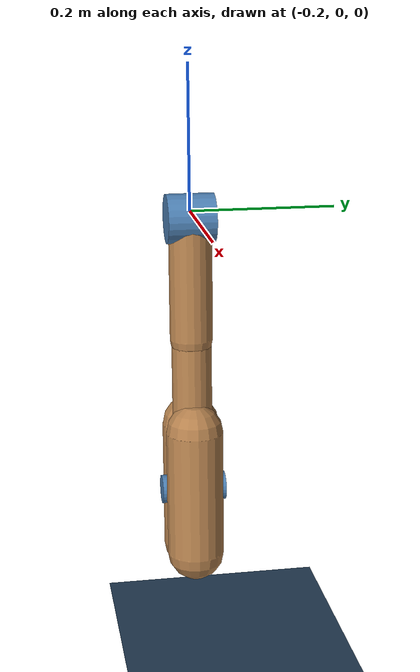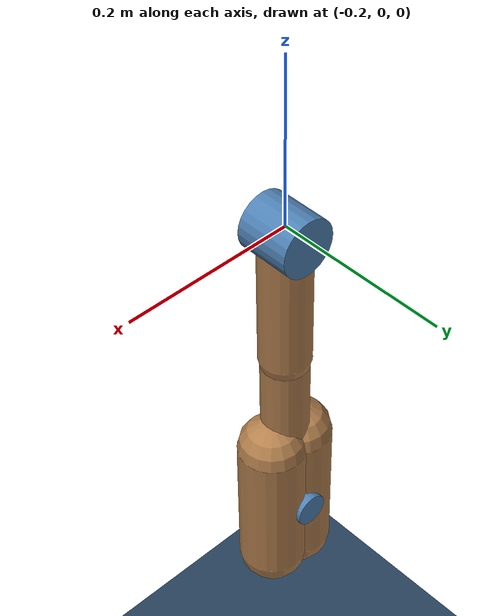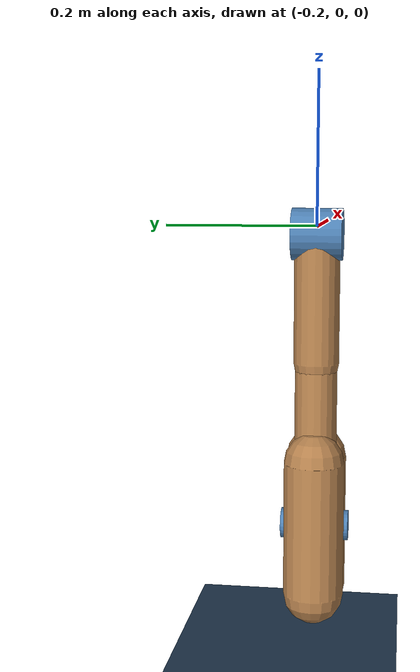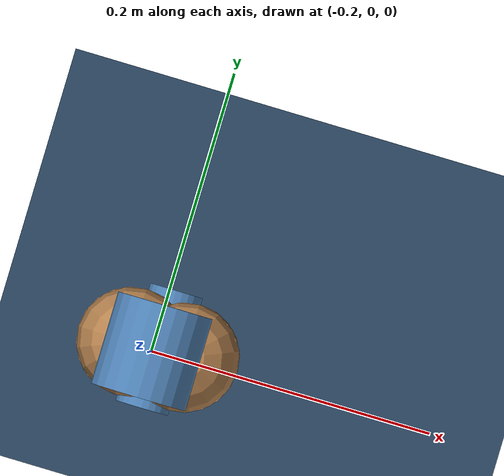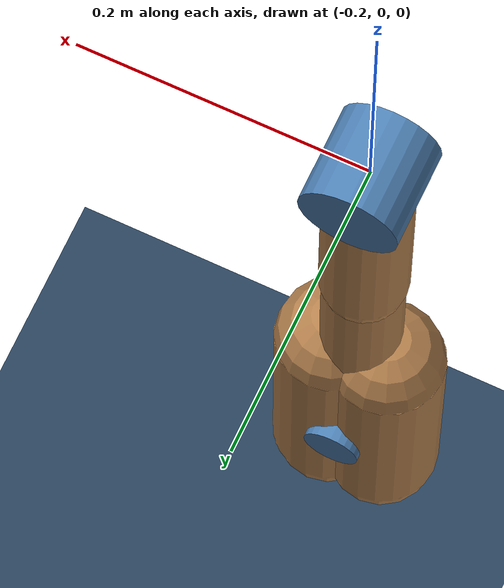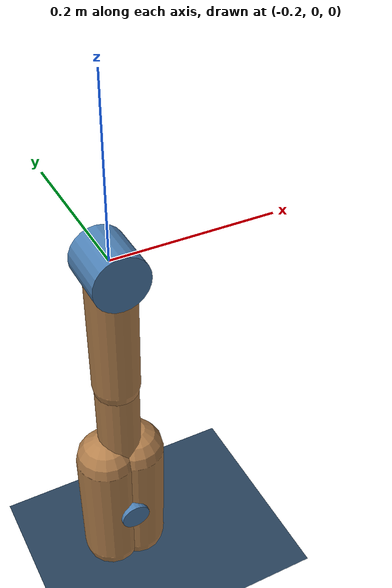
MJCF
<!--Compare at 150 samples 1000 encouragement of collision and 100ms Cov Reg: 1-->

<mujoco model="finger">

    <visual>
        <headlight ambient=".4 .4 .4" diffuse=".8 .8 .8" specular="0.1 0.1 0.1"/>
        <map znear=".01"/>
        <quality shadowsize="2048"/>
    </visual>

    <asset>
        <texture name="skybox" type="skybox" builtin="gradient" rgb1=".4 .6 .8" rgb2="0 0 0"
                 width="800" height="800" mark="random" markrgb="1 1 1"/>
    </asset>

    <asset>
        <texture name="grid" type="2d" builtin="checker" rgb1=".1 .2 .3" rgb2=".2 .3 .4" width="300" height="300" mark="edge" markrgb=".2 .3 .4"/>
        <material name="grid" texture="grid" texrepeat="1 1" texuniform="true" reflectance=".2"/>
        <material name="self" rgba=".7 .5 .3 1"/>
        <material name="self_default" rgba=".7 .5 .3 1"/>
        <material name="self_highlight" rgba="0 .5 .3 1"/>
        <material name="effector" rgba=".7 .4 .2 1"/>
        <material name="effector_default" rgba=".7 .4 .2 1"/>
        <material name="effector_highlight" rgba="0 .5 .3 1"/>
        <material name="decoration" rgba=".3 .5 .7 1"/>
        <material name="eye" rgba="0 .2 1 1"/>
        <material name="target" rgba=".6 .3 .3 1"/>
        <material name="target_default" rgba=".6 .3 .3 1"/>
        <material name="target_highlight" rgba=".6 .3 .3 .4"/>
    </asset>

    <option timestep="0.01" cone="elliptic" iterations="20">
        <flag gravity="disable"/>
    </option>

    <default>
        <geom solimp="0 0.9 0.01" solref=".02 1"/>
        <joint type="hinge" axis="0 -1 0"/>
        <motor ctrllimited="true" ctrlrange="-1 1"/>
        <default class="finger">
            <site type="ellipsoid" size=".025 .03 .025" rgba=".5 .5 .5 .3" group="3"/>
        </default>
    </default>

    <worldbody>
        <light name="light" directional="true" diffuse=".6 .6 .6" pos="0 0 2" specular=".3 .3 .3"/>
        <geom name="ground" type="plane" pos="0 0 -0.6" size=".6 .2 10" material="grid"/>
        <camera name="cam0" pos="0 -1 .8" xyaxes="1 0 0 0 1 2"/>
        <camera name="cam1" pos="0 -1 .4" xyaxes="1 0 0 0 0 1" />

        <body name="proximal" pos="-.2 0 -0.01" childclass="finger">
            <geom name="proximal_decoration" type="cylinder" fromto="0 -.033 0 0 .033 0" size=".034" material="decoration" />
            <joint name="proximal" range="-150 -80" ref="-90" damping="0.05" limited="false" />
            <geom name="proximal" type="capsule" material="self" size=".03" fromto="0 0 0 0 0 -.17"/>
            <body name="distal" pos="0 0 -.18" childclass="finger">
                <joint name="distal" range="-50 50" damping="0.05" limited="false"/>
                <geom name="distal" type="capsule" size=".028" material="self" fromto="0 0 0 0 0 -.16" contype="0" conaffinity="0"/>
                <geom name="fingertip" type="capsule" size=".03" material="effector" fromto="0 0 -.13 0 0 -.161"/>
                <site name="touchtop" pos=".01 0 -.17"/>
                <site name="touchbottom" pos="-.01 0 -.17"/>
            </body>
        </body>

        <body name="spinner" pos="-.2 0 -.4">
            <joint name="hinge" range="-50 50" frictionloss=".01" damping=".35" limited="false"/>
            <geom name="cap1" type="capsule" size=".04 .09" material="self" pos=".02 0 0" />
            <geom name="cap2" type="capsule" size=".04 .09" material="self" pos="-.02 0 0"/>
            <site name="tip" type="sphere"  size=".02" pos="0 0 .13" material="target"/>
            <geom name="spinner_decoration" type="cylinder" fromto="0 -.045 0 0 .045 0" size=".02" material="decoration"/>
        </body>

    </worldbody>

    <actuator>
        <motor name="proximal" joint="proximal" gear="3"/>
        <motor name="distal" joint="distal" gear="1.5"/>
    </actuator>

    <!-- All finger observations are functions of sensors. This is useful for finite-differencing. -->
    <sensor>
        <jointpos name="proximal" joint="proximal"/>
        <jointpos name="distal" joint="distal"/>
        <jointvel name="proximal_velocity" joint="proximal"/>
        <jointvel name="distal_velocity" joint="distal"/>
        <touch name="touchtop" site="touchtop"/>
        <touch name="touchbottom" site="touchbottom"/>
        <framepos name="touchtop_pos" objtype="site" objname="touchtop"/>
        <framepos name="touchbottom_pos" objtype="site" objname="touchbottom"/>
    </sensor>

</mujoco>
